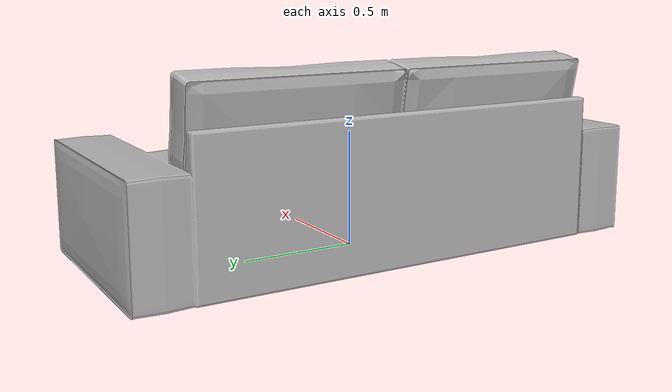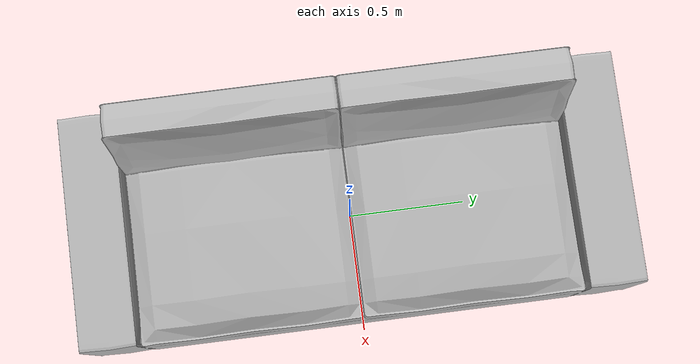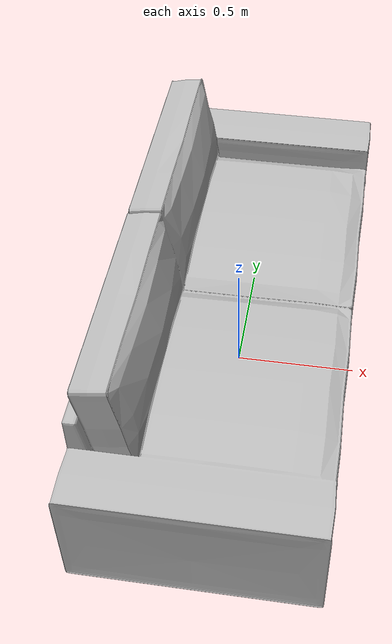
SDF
<?xml version='1.0'?>
<sdf version='1.4'>
  <model name='s__385'>
    <pose>0 0 0 0 0 0</pose>
    <static>true</static>
    <link name='link'>
      <collision name='collision'>
        <pose>0 0 0 0 0 0</pose>
        <geometry>
          <box>
            <size>0.95 2.28 2</size>
          </box>
        </geometry>
      </collision>
      <visual name='visual'>
        <pose>0 0 0 0 0 0</pose>
        <geometry>
          <mesh><uri>model://s__385/s__385.dae</uri></mesh>
        </geometry>
      </visual>
    </link>
  </model>
</sdf>
